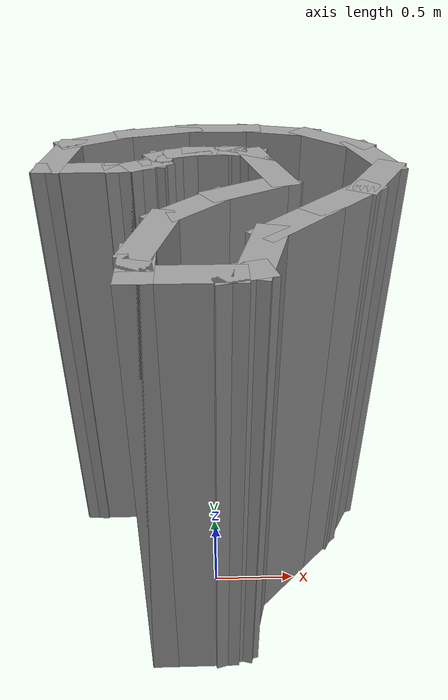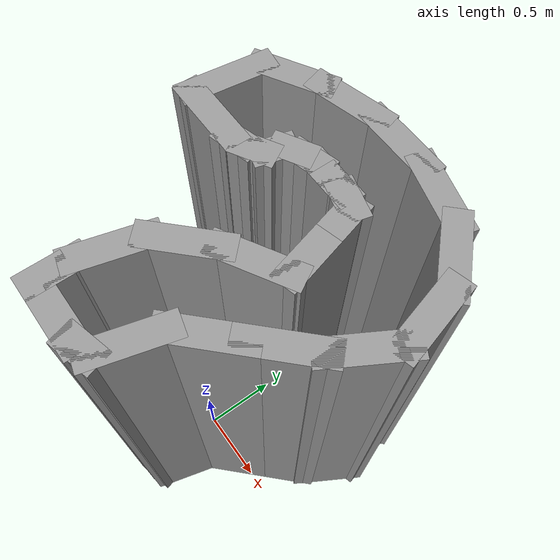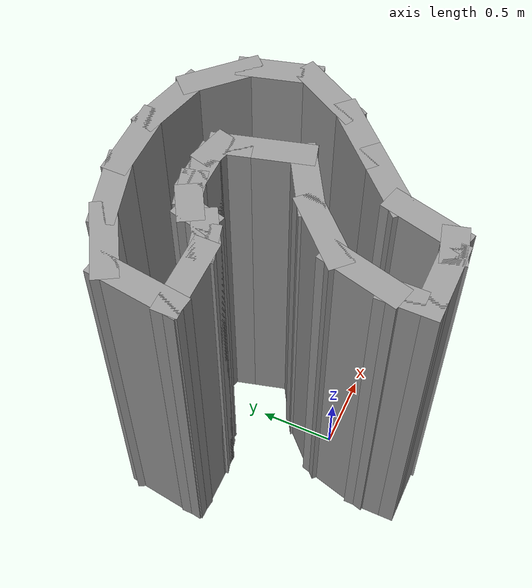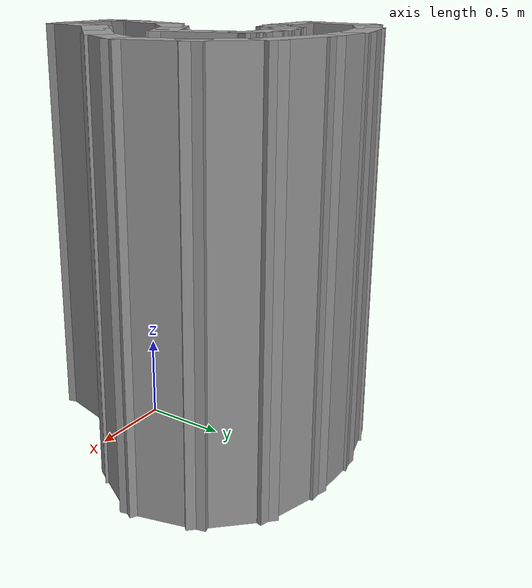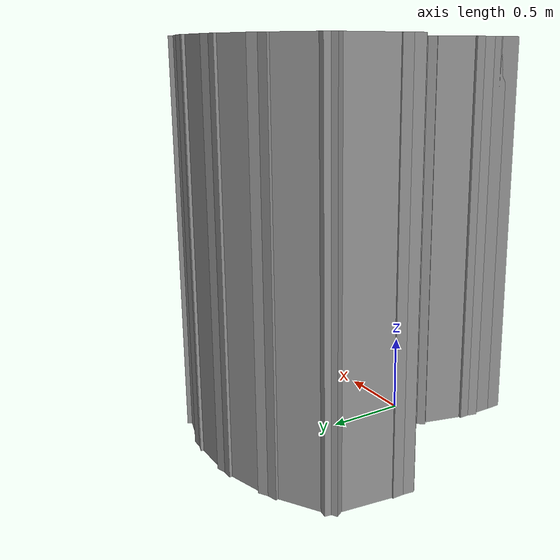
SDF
<?xml version='1.0'?>
<sdf version='1.7'>
    <model name='RI_C_Shape'>
        <pose>0.049699 -0.047576 0 0 -0 0</pose>
        <link name='Wall_10'>
        <collision name='Wall_10_Collision'>
            <geometry>
            <box>
                <size>0.25 0.15 2.5</size>
            </box>
            </geometry>
            <pose>0 0 1.25 0 -0 0</pose>
        </collision>
        <visual name='Wall_10_Visual'>
            <pose>0 0 1.25 0 -0 0</pose>
            <geometry>
            <box>
                <size>0.25 0.15 2.5</size>
            </box>
            </geometry>
            <material>
            <script>
                <uri>file://media/materials/scripts/gazebo.material</uri>
                <name>Gazebo/Grey</name>
            </script>
            <ambient>1 1 1 1</ambient>
            </material>
            <meta>
            <layer>0</layer>
            </meta>
        </visual>
        <pose>-0.323563 0.801754 0 0 -0 1.309</pose>
        </link>
        <link name='Wall_11'>
        <collision name='Wall_11_Collision'>
            <geometry>
            <box>
                <size>0.25 0.15 2.5</size>
            </box>
            </geometry>
            <pose>0 0 1.25 0 -0 0</pose>
        </collision>
        <visual name='Wall_11_Visual'>
            <pose>0 0 1.25 0 -0 0</pose>
            <geometry>
            <box>
                <size>0.25 0.15 2.5</size>
            </box>
            </geometry>
            <material>
            <script>
                <uri>file://media/materials/scripts/gazebo.material</uri>
                <name>Gazebo/Grey</name>
            </script>
            <ambient>1 1 1 1</ambient>
            </material>
            <meta>
            <layer>0</layer>
            </meta>
        </visual>
        <pose>-0.26732 0.875051 0 0 -0 0.523599</pose>
        </link>
        <link name='Wall_12'>
        <collision name='Wall_12_Collision'>
            <geometry>
            <box>
                <size>0.25 0.15 2.5</size>
            </box>
            </geometry>
            <pose>0 0 1.25 0 -0 0</pose>
        </collision>
        <visual name='Wall_12_Visual'>
            <pose>0 0 1.25 0 -0 0</pose>
            <geometry>
            <box>
                <size>0.25 0.15 2.5</size>
            </box>
            </geometry>
            <material>
            <script>
                <uri>file://media/materials/scripts/gazebo.material</uri>
                <name>Gazebo/Grey</name>
            </script>
            <ambient>1 1 1 1</ambient>
            </material>
            <meta>
            <layer>0</layer>
            </meta>
        </visual>
        <pose>-0.175723 0.912992 0 0 -0 0.261799</pose>
        </link>
        <link name='Wall_13'>
        <collision name='Wall_13_Collision'>
            <geometry>
            <box>
                <size>0.25 0.15 2.5</size>
            </box>
            </geometry>
            <pose>0 0 1.25 0 -0 0</pose>
        </collision>
        <visual name='Wall_13_Visual'>
            <pose>0 0 1.25 0 -0 0</pose>
            <geometry>
            <box>
                <size>0.25 0.15 2.5</size>
            </box>
            </geometry>
            <material>
            <script>
                <uri>file://media/materials/scripts/gazebo.material</uri>
                <name>Gazebo/Grey</name>
            </script>
            <ambient>1 1 1 1</ambient>
            </material>
            <meta>
            <layer>0</layer>
            </meta>
        </visual>
        <pose>-0.077427 0.925933 0 0 -0 0</pose>
        </link>
        <link name='Wall_14'>
        <collision name='Wall_14_Collision'>
            <geometry>
            <box>
                <size>0.25 0.15 2.5</size>
            </box>
            </geometry>
            <pose>0 0 1.25 0 -0 0</pose>
        </collision>
        <visual name='Wall_14_Visual'>
            <pose>0 0 1.25 0 -0 0</pose>
            <geometry>
            <box>
                <size>0.25 0.15 2.5</size>
            </box>
            </geometry>
            <material>
            <script>
                <uri>file://media/materials/scripts/gazebo.material</uri>
                <name>Gazebo/Grey</name>
            </script>
            <ambient>1 1 1 1</ambient>
            </material>
            <meta>
            <layer>0</layer>
            </meta>
        </visual>
        <pose>0.022573 0.925933 0 0 -0 0</pose>
        </link>
        <link name='Wall_15'>
        <collision name='Wall_15_Collision'>
            <geometry>
            <box>
                <size>0.15 0.15 2.5</size>
            </box>
            </geometry>
            <pose>0 0 1.25 0 -0 0</pose>
        </collision>
        <visual name='Wall_15_Visual'>
            <pose>0 0 1.25 0 -0 0</pose>
            <geometry>
            <box>
                <size>0.15 0.15 2.5</size>
            </box>
            </geometry>
            <material>
            <script>
                <uri>file://media/materials/scripts/gazebo.material</uri>
                <name>Gazebo/Grey</name>
            </script>
            <ambient>1 1 1 1</ambient>
            </material>
            <meta>
            <layer>0</layer>
            </meta>
        </visual>
        <pose>0.072573 0.925933 0 0 -0 0</pose>
        </link>
        <link name='Wall_16'>
        <collision name='Wall_16_Collision'>
            <geometry>
            <box>
                <size>0.25 0.15 2.5</size>
            </box>
            </geometry>
            <pose>0 0 1.25 0 -0 0</pose>
        </collision>
        <visual name='Wall_16_Visual'>
            <pose>0 0 1.25 0 -0 0</pose>
            <geometry>
            <box>
                <size>0.25 0.15 2.5</size>
            </box>
            </geometry>
            <material>
            <script>
                <uri>file://media/materials/scripts/gazebo.material</uri>
                <name>Gazebo/Grey</name>
            </script>
            <ambient>1 1 1 1</ambient>
            </material>
            <meta>
            <layer>0</layer>
            </meta>
        </visual>
        <pose>0.12087 0.912992 0 0 -0 -0.261799</pose>
        </link>
        <link name='Wall_17'>
        <collision name='Wall_17_Collision'>
            <geometry>
            <box>
                <size>0.25 0.15 2.5</size>
            </box>
            </geometry>
            <pose>0 0 1.25 0 -0 0</pose>
        </collision>
        <visual name='Wall_17_Visual'>
            <pose>0 0 1.25 0 -0 0</pose>
            <geometry>
            <box>
                <size>0.25 0.15 2.5</size>
            </box>
            </geometry>
            <material>
            <script>
                <uri>file://media/materials/scripts/gazebo.material</uri>
                <name>Gazebo/Grey</name>
            </script>
            <ambient>1 1 1 1</ambient>
            </material>
            <meta>
            <layer>0</layer>
            </meta>
        </visual>
        <pose>0.182107 0.851754 0 0 -0 -1.309</pose>
        </link>
        <link name='Wall_18'>
        <collision name='Wall_18_Collision'>
            <geometry>
            <box>
                <size>0.5 0.15 2.5</size>
            </box>
            </geometry>
            <pose>0 0 1.25 0 -0 0</pose>
        </collision>
        <visual name='Wall_18_Visual'>
            <pose>0 0 1.25 0 -0 0</pose>
            <geometry>
            <box>
                <size>0.5 0.15 2.5</size>
            </box>
            </geometry>
            <material>
            <script>
                <uri>file://media/materials/scripts/gazebo.material</uri>
                <name>Gazebo/Grey</name>
            </script>
            <ambient>1 1 1 1</ambient>
            </material>
            <meta>
            <layer>0</layer>
            </meta>
        </visual>
        <pose>0.240341 0.634421 0 0 -0 -1.309</pose>
        </link>
        <link name='Wall_19'>
        <collision name='Wall_19_Collision'>
            <geometry>
            <box>
                <size>0.5 0.15 2.5</size>
            </box>
            </geometry>
            <pose>0 0 1.25 0 -0 0</pose>
        </collision>
        <visual name='Wall_19_Visual'>
            <pose>0 0 1.25 0 -0 0</pose>
            <geometry>
            <box>
                <size>0.5 0.15 2.5</size>
            </box>
            </geometry>
            <material>
            <script>
                <uri>file://media/materials/scripts/gazebo.material</uri>
                <name>Gazebo/Grey</name>
            </script>
            <ambient>1 1 1 1</ambient>
            </material>
            <meta>
            <layer>0</layer>
            </meta>
        </visual>
        <pose>0.13408 0.377884 0 0 -0 -2.61799</pose>
        </link>
        <link name='Wall_2'>
        <collision name='Wall_2_Collision'>
            <geometry>
            <box>
                <size>0.5 0.15 2.5</size>
            </box>
            </geometry>
            <pose>0 0 1.25 0 -0 0</pose>
        </collision>
        <visual name='Wall_2_Visual'>
            <pose>0 0 1.25 0 -0 0</pose>
            <geometry>
            <box>
                <size>0.5 0.15 2.5</size>
            </box>
            </geometry>
            <material>
            <script>
                <uri>file://media/materials/scripts/gazebo.material</uri>
                <name>Gazebo/Grey</name>
            </script>
            <ambient>1 1 1 1</ambient>
            </material>
            <meta>
            <layer>0</layer>
            </meta>
        </visual>
        <pose>-0.694699 0.677576 0 0 -0 0</pose>
        </link>
        <link name='Wall_20'>
        <collision name='Wall_20_Collision'>
            <geometry>
            <box>
                <size>0.5 0.15 2.5</size>
            </box>
            </geometry>
            <pose>0 0 1.25 0 -0 0</pose>
        </collision>
        <visual name='Wall_20_Visual'>
            <pose>0 0 1.25 0 -0 0</pose>
            <geometry>
            <box>
                <size>0.5 0.15 2.5</size>
            </box>
            </geometry>
            <material>
            <script>
                <uri>file://media/materials/scripts/gazebo.material</uri>
                <name>Gazebo/Grey</name>
            </script>
            <ambient>1 1 1 1</ambient>
            </material>
            <meta>
            <layer>0</layer>
            </meta>
        </visual>
        <pose>-0.141218 0.16664 0 0 -0 -2.35619</pose>
        </link>
        <link name='Wall_21'>
        <collision name='Wall_21_Collision'>
            <geometry>
            <box>
                <size>0.5 0.15 2.5</size>
            </box>
            </geometry>
            <pose>0 0 1.25 0 -0 0</pose>
        </collision>
        <visual name='Wall_21_Visual'>
            <pose>0 0 1.25 0 -0 0</pose>
            <geometry>
            <box>
                <size>0.5 0.15 2.5</size>
            </box>
            </geometry>
            <material>
            <script>
                <uri>file://media/materials/scripts/gazebo.material</uri>
                <name>Gazebo/Grey</name>
            </script>
            <ambient>1 1 1 1</ambient>
            </material>
            <meta>
            <layer>0</layer>
            </meta>
        </visual>
        <pose>-0.310255 -0.12614 0 0 -0 -1.8326</pose>
        </link>
        <link name='Wall_22'>
        <collision name='Wall_22_Collision'>
            <geometry>
            <box>
                <size>0.25 0.15 2.5</size>
            </box>
            </geometry>
            <pose>0 0 1.25 0 -0 0</pose>
        </collision>
        <visual name='Wall_22_Visual'>
            <pose>0 0 1.25 0 -0 0</pose>
            <geometry>
            <box>
                <size>0.25 0.15 2.5</size>
            </box>
            </geometry>
            <material>
            <script>
                <uri>file://media/materials/scripts/gazebo.material</uri>
                <name>Gazebo/Grey</name>
            </script>
            <ambient>1 1 1 1</ambient>
            </material>
            <meta>
            <layer>0</layer>
            </meta>
        </visual>
        <pose>-0.355548 -0.345177 0 0 -0 -1.5708</pose>
        </link>
        <link name='Wall_23'>
        <collision name='Wall_23_Collision'>
            <geometry>
            <box>
                <size>0.25 0.15 2.5</size>
            </box>
            </geometry>
            <pose>0 0 1.25 0 -0 0</pose>
        </collision>
        <visual name='Wall_23_Visual'>
            <pose>0 0 1.25 0 -0 0</pose>
            <geometry>
            <box>
                <size>0.25 0.15 2.5</size>
            </box>
            </geometry>
            <material>
            <script>
                <uri>file://media/materials/scripts/gazebo.material</uri>
                <name>Gazebo/Grey</name>
            </script>
            <ambient>1 1 1 1</ambient>
            </material>
            <meta>
            <layer>0</layer>
            </meta>
        </visual>
        <pose>-0.355548 -0.445177 0 0 -0 -1.5708</pose>
        </link>
        <link name='Wall_24'>
        <collision name='Wall_24_Collision'>
            <geometry>
            <box>
                <size>0.5 0.15 2.5</size>
            </box>
            </geometry>
            <pose>0 0 1.25 0 -0 0</pose>
        </collision>
        <visual name='Wall_24_Visual'>
            <pose>0 0 1.25 0 -0 0</pose>
            <geometry>
            <box>
                <size>0.5 0.15 2.5</size>
            </box>
            </geometry>
            <material>
            <script>
                <uri>file://media/materials/scripts/gazebo.material</uri>
                <name>Gazebo/Grey</name>
            </script>
            <ambient>1 1 1 1</ambient>
            </material>
            <meta>
            <layer>0</layer>
            </meta>
        </visual>
        <pose>-0.180548 -0.495177 0 0 -0 0</pose>
        </link>
        <link name='Wall_25'>
        <collision name='Wall_25_Collision'>
            <geometry>
            <box>
                <size>0.25 0.15 2.5</size>
            </box>
            </geometry>
            <pose>0 0 1.25 0 -0 0</pose>
        </collision>
        <visual name='Wall_25_Visual'>
            <pose>0 0 1.25 0 -0 0</pose>
            <geometry>
            <box>
                <size>0.25 0.15 2.5</size>
            </box>
            </geometry>
            <material>
            <script>
                <uri>file://media/materials/scripts/gazebo.material</uri>
                <name>Gazebo/Grey</name>
            </script>
            <ambient>1 1 1 1</ambient>
            </material>
            <meta>
            <layer>0</layer>
            </meta>
        </visual>
        <pose>0.042748 -0.482236 0 0 -0 0.261799</pose>
        </link>
        <link name='Wall_26'>
        <collision name='Wall_26_Collision'>
            <geometry>
            <box>
                <size>0.5 0.15 2.5</size>
            </box>
            </geometry>
            <pose>0 0 1.25 0 -0 0</pose>
        </collision>
        <visual name='Wall_26_Visual'>
            <pose>0 0 1.25 0 -0 0</pose>
            <geometry>
            <box>
                <size>0.5 0.15 2.5</size>
            </box>
            </geometry>
            <material>
            <script>
                <uri>file://media/materials/scripts/gazebo.material</uri>
                <name>Gazebo/Grey</name>
            </script>
            <ambient>1 1 1 1</ambient>
            </material>
            <meta>
            <layer>0</layer>
            </meta>
        </visual>
        <pose>0.136338 -0.300258 0 0 -0 1.309</pose>
        </link>
        <link name='Wall_27'>
        <collision name='Wall_27_Collision'>
            <geometry>
            <box>
                <size>0.5 0.15 2.5</size>
            </box>
            </geometry>
            <pose>0 0 1.25 0 -0 0</pose>
        </collision>
        <visual name='Wall_27_Visual'>
            <pose>0 0 1.25 0 -0 0</pose>
            <geometry>
            <box>
                <size>0.5 0.15 2.5</size>
            </box>
            </geometry>
            <material>
            <script>
                <uri>file://media/materials/scripts/gazebo.material</uri>
                <name>Gazebo/Grey</name>
            </script>
            <ambient>1 1 1 1</ambient>
            </material>
            <meta>
            <layer>0</layer>
            </meta>
        </visual>
        <pose>0.305375 -0.007478 0 0 -0 0.785398</pose>
        </link>
        <link name='Wall_28'>
        <collision name='Wall_28_Collision'>
            <geometry>
            <box>
                <size>0.5 0.15 2.5</size>
            </box>
            </geometry>
            <pose>0 0 1.25 0 -0 0</pose>
        </collision>
        <visual name='Wall_28_Visual'>
            <pose>0 0 1.25 0 -0 0</pose>
            <geometry>
            <box>
                <size>0.5 0.15 2.5</size>
            </box>
            </geometry>
            <material>
            <script>
                <uri>file://media/materials/scripts/gazebo.material</uri>
                <name>Gazebo/Grey</name>
            </script>
            <ambient>1 1 1 1</ambient>
            </material>
            <meta>
            <layer>0</layer>
            </meta>
        </visual>
        <pose>0.552862 0.24001 0 0 -0 0.785398</pose>
        </link>
        <link name='Wall_29'>
        <collision name='Wall_29_Collision'>
            <geometry>
            <box>
                <size>0.5 0.15 2.5</size>
            </box>
            </geometry>
            <pose>0 0 1.25 0 -0 0</pose>
        </collision>
        <visual name='Wall_29_Visual'>
            <pose>0 0 1.25 0 -0 0</pose>
            <geometry>
            <box>
                <size>0.5 0.15 2.5</size>
            </box>
            </geometry>
            <material>
            <script>
                <uri>file://media/materials/scripts/gazebo.material</uri>
                <name>Gazebo/Grey</name>
            </script>
            <ambient>1 1 1 1</ambient>
            </material>
            <meta>
            <layer>0</layer>
            </meta>
        </visual>
        <pose>0.764106 0.515308 0 0 -0 1.0472</pose>
        </link>
        <link name='Wall_3'>
        <collision name='Wall_3_Collision'>
            <geometry>
            <box>
                <size>0.15 0.15 2.5</size>
            </box>
            </geometry>
            <pose>0 0 1.25 0 -0 0</pose>
        </collision>
        <visual name='Wall_3_Visual'>
            <pose>0 0 1.25 0 -0 0</pose>
            <geometry>
            <box>
                <size>0.15 0.15 2.5</size>
            </box>
            </geometry>
            <material>
            <script>
                <uri>file://media/materials/scripts/gazebo.material</uri>
                <name>Gazebo/Grey</name>
            </script>
            <ambient>1 1 1 1</ambient>
            </material>
            <meta>
            <layer>0</layer>
            </meta>
        </visual>
        <pose>-0.519699 0.677576 0 0 -0 0</pose>
        </link>
        <link name='Wall_30'>
        <collision name='Wall_30_Collision'>
            <geometry>
            <box>
                <size>0.5 0.15 2.5</size>
            </box>
            </geometry>
            <pose>0 0 1.25 0 -0 0</pose>
        </collision>
        <visual name='Wall_30_Visual'>
            <pose>0 0 1.25 0 -0 0</pose>
            <geometry>
            <box>
                <size>0.5 0.15 2.5</size>
            </box>
            </geometry>
            <material>
            <script>
                <uri>file://media/materials/scripts/gazebo.material</uri>
                <name>Gazebo/Grey</name>
            </script>
            <ambient>1 1 1 1</ambient>
            </material>
            <meta>
            <layer>0</layer>
            </meta>
        </visual>
        <pose>0.806312 0.835899 0 0 -0 1.8326</pose>
        </link>
        <link name='Wall_31'>
        <collision name='Wall_31_Collision'>
            <geometry>
            <box>
                <size>0.5 0.15 2.5</size>
            </box>
            </geometry>
            <pose>0 0 1.25 0 -0 0</pose>
        </collision>
        <visual name='Wall_31_Visual'>
            <pose>0 0 1.25 0 -0 0</pose>
            <geometry>
            <box>
                <size>0.5 0.15 2.5</size>
            </box>
            </geometry>
            <material>
            <script>
                <uri>file://media/materials/scripts/gazebo.material</uri>
                <name>Gazebo/Grey</name>
            </script>
            <ambient>1 1 1 1</ambient>
            </material>
            <meta>
            <layer>0</layer>
            </meta>
        </visual>
        <pose>0.637275 1.12868 0 0 -0 2.35619</pose>
        </link>
        <link name='Wall_32'>
        <collision name='Wall_32_Collision'>
            <geometry>
            <box>
                <size>0.5 0.15 2.5</size>
            </box>
            </geometry>
            <pose>0 0 1.25 0 -0 0</pose>
        </collision>
        <visual name='Wall_32_Visual'>
            <pose>0 0 1.25 0 -0 0</pose>
            <geometry>
            <box>
                <size>0.5 0.15 2.5</size>
            </box>
            </geometry>
            <material>
            <script>
                <uri>file://media/materials/scripts/gazebo.material</uri>
                <name>Gazebo/Grey</name>
            </script>
            <ambient>1 1 1 1</ambient>
            </material>
            <meta>
            <layer>0</layer>
            </meta>
        </visual>
        <pose>0.344495 1.29772 0 0 -0 2.87979</pose>
        </link>
        <link name='Wall_33'>
        <collision name='Wall_33_Collision'>
            <geometry>
            <box>
                <size>0.5 0.15 2.5</size>
            </box>
            </geometry>
            <pose>0 0 1.25 0 -0 0</pose>
        </collision>
        <visual name='Wall_33_Visual'>
            <pose>0 0 1.25 0 -0 0</pose>
            <geometry>
            <box>
                <size>0.5 0.15 2.5</size>
            </box>
            </geometry>
            <material>
            <script>
                <uri>file://media/materials/scripts/gazebo.material</uri>
                <name>Gazebo/Grey</name>
            </script>
            <ambient>1 1 1 1</ambient>
            </material>
            <meta>
            <layer>0</layer>
            </meta>
        </visual>
        <pose>0.000458 1.34301 0 0 -0 3.14159</pose>
        </link>
        <link name='Wall_34'>
        <collision name='Wall_34_Collision'>
            <geometry>
            <box>
                <size>0.5 0.15 2.5</size>
            </box>
            </geometry>
            <pose>0 0 1.25 0 -0 0</pose>
        </collision>
        <visual name='Wall_34_Visual'>
            <pose>0 0 1.25 0 -0 0</pose>
            <geometry>
            <box>
                <size>0.5 0.15 2.5</size>
            </box>
            </geometry>
            <material>
            <script>
                <uri>file://media/materials/scripts/gazebo.material</uri>
                <name>Gazebo/Grey</name>
            </script>
            <ambient>1 1 1 1</ambient>
            </material>
            <meta>
            <layer>0</layer>
            </meta>
        </visual>
        <pose>-0.343579 1.29772 0 0 -0 -2.87979</pose>
        </link>
        <link name='Wall_35'>
        <collision name='Wall_35_Collision'>
            <geometry>
            <box>
                <size>0.5 0.15 2.5</size>
            </box>
            </geometry>
            <pose>0 0 1.25 0 -0 0</pose>
        </collision>
        <visual name='Wall_35_Visual'>
            <pose>0 0 1.25 0 -0 0</pose>
            <geometry>
            <box>
                <size>0.5 0.15 2.5</size>
            </box>
            </geometry>
            <material>
            <script>
                <uri>file://media/materials/scripts/gazebo.material</uri>
                <name>Gazebo/Grey</name>
            </script>
            <ambient>1 1 1 1</ambient>
            </material>
            <meta>
            <layer>0</layer>
            </meta>
        </visual>
        <pose>-0.664171 1.16492 0 0 -0 -2.61799</pose>
        </link>
        <link name='Wall_36'>
        <collision name='Wall_36_Collision'>
            <geometry>
            <box>
                <size>0.553474 0.15 2.5</size>
            </box>
            </geometry>
            <pose>0 0 1.25 0 -0 0</pose>
        </collision>
        <visual name='Wall_36_Visual'>
            <pose>0 0 1.25 0 -0 0</pose>
            <geometry>
            <box>
                <size>0.553474 0.15 2.5</size>
            </box>
            </geometry>
            <material>
            <script>
                <uri>file://media/materials/scripts/gazebo.material</uri>
                <name>Gazebo/Grey</name>
            </script>
            <ambient>1 1 1 1</ambient>
            </material>
            <meta>
            <layer>0</layer>
            </meta>
        </visual>
        <pose>-0.842712 0.8775 0 0 -0 -1.70497</pose>
        </link>

        <link name='Wall_4'>
        <collision name='Wall_4_Collision'>
            <geometry>
            <box>
                <size>0.25 0.15 2.5</size>
            </box>
            </geometry>
            <pose>0 0 1.25 0 -0 0</pose>
        </collision>
        <visual name='Wall_4_Visual'>
            <pose>0 0 1.25 0 -0 0</pose>
            <geometry>
            <box>
                <size>0.25 0.15 2.5</size>
            </box>
            </geometry>
            <material>
            <script>
                <uri>file://media/materials/scripts/gazebo.material</uri>
                <name>Gazebo/Grey</name>
            </script>
            <ambient>1 1 1 1</ambient>
            </material>
            <meta>
            <layer>0</layer>
            </meta>
        </visual>
        <pose>-0.471402 0.690517 0 0 -0 0.261799</pose>
        </link>

        <link name='Wall_5'>
        <collision name='Wall_5_Collision'>
            <geometry>
            <box>
                <size>0.25 0.15 2.5</size>
            </box>
            </geometry>
            <pose>0 0 1.25 0 -0 0</pose>
        </collision>
        <visual name='Wall_5_Visual'>
            <pose>0 0 1.25 0 -0 0</pose>
            <geometry>
            <box>
                <size>0.25 0.15 2.5</size>
            </box>
            </geometry>
            <material>
            <script>
                <uri>file://media/materials/scripts/gazebo.material</uri>
                <name>Gazebo/Grey</name>
            </script>
            <ambient>1 1 1 1</ambient>
            </material>
            <meta>
            <layer>0</layer>
            </meta>
        </visual>
        <pose>-0.471402 0.690517 0 0 -0 -2.87979</pose>
        </link>
        <link name='Wall_6'>
        <collision name='Wall_6_Collision'>
            <geometry>
            <box>
                <size>0.25 0.15 2.5</size>
            </box>
            </geometry>
            <pose>0 0 1.25 0 -0 0</pose>
        </collision>
        <visual name='Wall_6_Visual'>
            <pose>0 0 1.25 0 -0 0</pose>
            <geometry>
            <box>
                <size>0.25 0.15 2.5</size>
            </box>
            </geometry>
            <material>
            <script>
                <uri>file://media/materials/scripts/gazebo.material</uri>
                <name>Gazebo/Grey</name>
            </script>
            <ambient>1 1 1 1</ambient>
            </material>
            <meta>
            <layer>0</layer>
            </meta>
        </visual>
        <pose>-0.471402 0.690517 0 0 -0 0.261799</pose>
        </link>
        <link name='Wall_7'>
        <collision name='Wall_7_Collision'>
            <geometry>
            <box>
                <size>0.25 0.15 2.5</size>
            </box>
            </geometry>
            <pose>0 0 1.25 0 -0 0</pose>
        </collision>
        <visual name='Wall_7_Visual'>
            <pose>0 0 1.25 0 -0 0</pose>
            <geometry>
            <box>
                <size>0.25 0.15 2.5</size>
            </box>
            </geometry>
            <material>
            <script>
                <uri>file://media/materials/scripts/gazebo.material</uri>
                <name>Gazebo/Grey</name>
            </script>
            <ambient>1 1 1 1</ambient>
            </material>
            <meta>
            <layer>0</layer>
            </meta>
        </visual>
        <pose>-0.471402 0.690517 0 0 -0 -2.87979</pose>
        </link>
        <link name='Wall_8'>
        <collision name='Wall_8_Collision'>
            <geometry>
            <box>
                <size>0.25 0.15 2.5</size>
            </box>
            </geometry>
            <pose>0 0 1.25 0 -0 0</pose>
        </collision>
        <visual name='Wall_8_Visual'>
            <pose>0 0 1.25 0 -0 0</pose>
            <geometry>
            <box>
                <size>0.25 0.15 2.5</size>
            </box>
            </geometry>
            <material>
            <script>
                <uri>file://media/materials/scripts/gazebo.material</uri>
                <name>Gazebo/Grey</name>
            </script>
            <ambient>1 1 1 1</ambient>
            </material>
            <meta>
            <layer>0</layer>
            </meta>
        </visual>
        <pose>-0.471402 0.690517 0 0 -0 0.261799</pose>
        </link>
        <link name='Wall_9'>
        <collision name='Wall_9_Collision'>
            <geometry>
            <box>
                <size>0.25 0.15 2.5</size>
            </box>
            </geometry>
            <pose>0 0 1.25 0 -0 0</pose>
        </collision>
        <visual name='Wall_9_Visual'>
            <pose>0 0 1.25 0 -0 0</pose>
            <geometry>
            <box>
                <size>0.25 0.15 2.5</size>
            </box>
            </geometry>
            <material>
            <script>
                <uri>file://media/materials/scripts/gazebo.material</uri>
                <name>Gazebo/Grey</name>
            </script>
            <ambient>1 1 1 1</ambient>
            </material>
            <meta>
            <layer>0</layer>
            </meta>
        </visual>
        <pose>-0.379805 0.728458 0 0 -0 0.523599</pose>
        </link>
        <static>1</static>
    </model>
</sdf>
